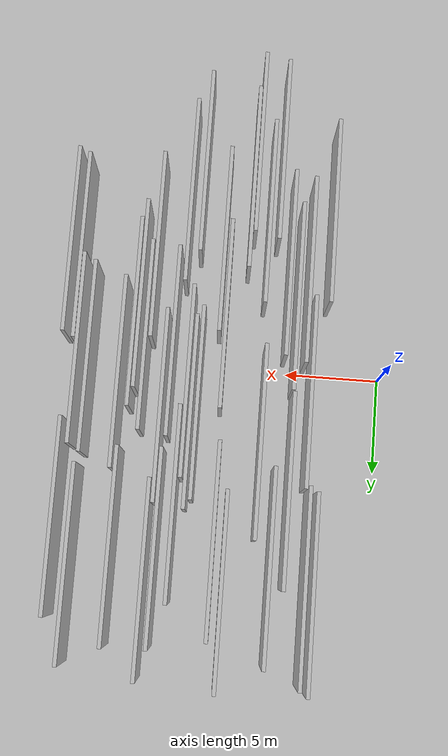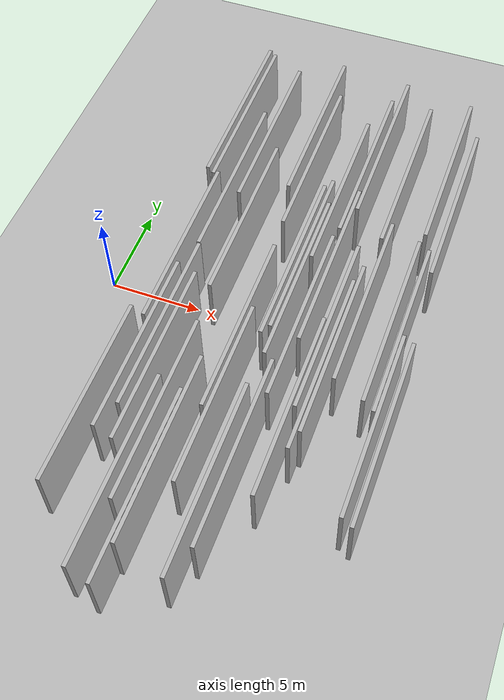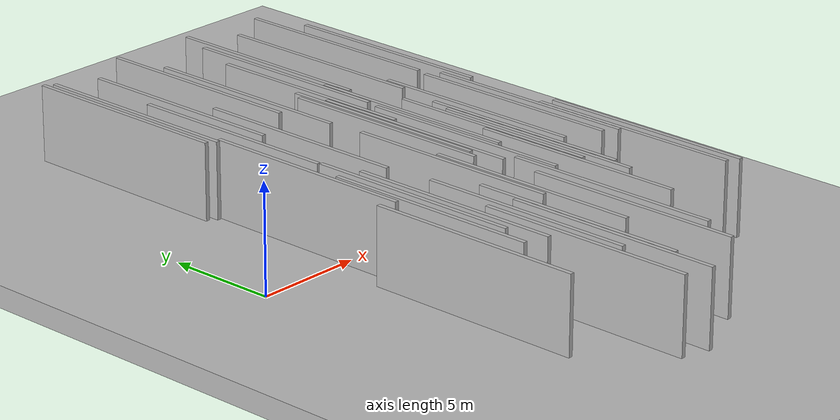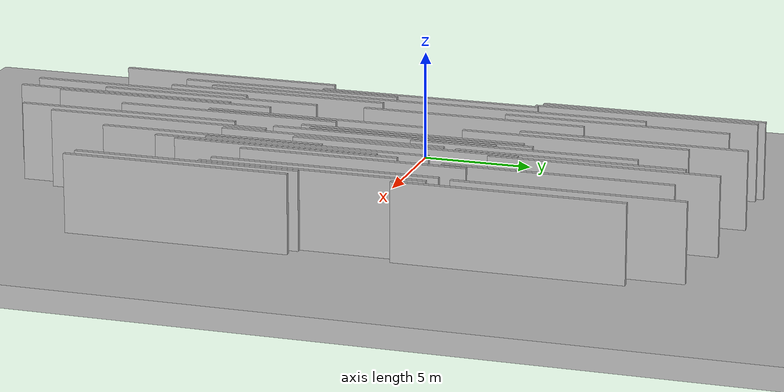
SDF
<?xml version="1.0" encoding="utf-8"?>

<sdf version="1.6">

   <world name="default">

      <gui fullscreen="0">

         <camera name="user_camera">

            <pose>-15 0 4.57585 0 0 0</pose>

            <view_controller>orbit</view_controller>

         </camera>

      </gui>

      <scene>

         <sky>

           <clouds>

             <speed>12</speed>

           </clouds>

         </sky>

         <ambient>0.4 0.4 0.4 1</ambient>

         <background>0.7 0.7 0.7 1</background>

         <shadows>1</shadows>

      </scene>

      <gravity>0 0 -9.8066</gravity>

      <magnetic_field>6e-06 2.3e-05 -4.2e-05</magnetic_field>

      <physics default="0" name="default_physics" type="ode">

         <ode>

            <solver>

               <type>quick</type>

               <iters>10</iters>

               <sor>1.0</sor>

               <use_dynamic_moi_rescaling>0</use_dynamic_moi_rescaling>

            </solver>

            <constraints>

               <cfm>0</cfm>

               <erp>0.2</erp>

               <contact_max_correcting_vel>100</contact_max_correcting_vel>

               <contact_surface_layer>0.001</contact_surface_layer>

            </constraints>

         </ode>

         <max_step_size>0.004</max_step_size>

         <real_time_factor>1</real_time_factor>

         <real_time_update_rate>250</real_time_update_rate>

      </physics>

      <light name="sun" type="directional">

         <cast_shadows>1</cast_shadows>

         <pose>0 0 10 0 0 0</pose>

         <diffuse>0.8 0.8 0.8 1</diffuse>

         <specular>0.2 0.2 0.2 1</specular>

         <attenuation>

            <range>1000</range>

            <constant>0.9</constant>

            <linear>0.01</linear>

            <quadratic>0.001</quadratic>

         </attenuation>

         <direction>-0.5 0.1 -0.9</direction>

      </light>

      <include>

         <name>ground_plane_1</name>

         <uri>model://HANNAS_ground_plane</uri>

         <pose>0 0 0  0 0 0</pose>

      </include>

      <include>

         <name>ground_plane_2</name>

         <uri>model://HANNAS_ground_plane</uri>

         <pose>100 0 0  0 0 0</pose>

      </include>

      <model name="HANNAS_wall_1">

         <static>1</static>

         <pose frame="">4.6352 6.4639 0.0 0.000000 0.000000 1.570796</pose>

         <link name="link">

            <pose frame="">0 0 2.00 0 0 0</pose>

            <collision name="collision">

               <geometry>

                  <box>

                     <size>10.00 0.2 4.00</size>

                  </box>

               </geometry>

               <max_contacts>10</max_contacts>

               <surface>

                  <contact>

                     <ode/>

                  </contact>

                  <bounce/>

                  <friction>

                     <torsional>

                        <ode/>

                     </torsional>

                     <ode/>

                  </friction>

               </surface>

            </collision>

            <visual name="visual">

               <cast_shadows>0</cast_shadows>

               <geometry>

                  <box>

                     <size>10.00 0.2 4.00</size>

                  </box>

               </geometry>

               <material>

                  <script>

                     <uri>model://HANNAS_wall/materials/scripts</uri>

                     <uri>model://HANNAS_wall/materials/textures</uri>

                     <name>vrc/HANNAS_wall</name>

                  </script>

               </material>

            </visual>

            <self_collide>0</self_collide>

            <enable_wind>0</enable_wind>

            <kinematic>0</kinematic>

         </link>

      </model>

      <model name="HANNAS_wall_2">

         <static>1</static>

         <pose frame="">13.7201 0.9784 0.0 0.000000 0.000000 1.570796</pose>

         <link name="link">

            <pose frame="">0 0 2.00 0 0 0</pose>

            <collision name="collision">

               <geometry>

                  <box>

                     <size>10.00 0.2 4.00</size>

                  </box>

               </geometry>

               <max_contacts>10</max_contacts>

               <surface>

                  <contact>

                     <ode/>

                  </contact>

                  <bounce/>

                  <friction>

                     <torsional>

                        <ode/>

                     </torsional>

                     <ode/>

                  </friction>

               </surface>

            </collision>

            <visual name="visual">

               <cast_shadows>0</cast_shadows>

               <geometry>

                  <box>

                     <size>10.00 0.2 4.00</size>

                  </box>

               </geometry>

               <material>

                  <script>

                     <uri>model://HANNAS_wall/materials/scripts</uri>

                     <uri>model://HANNAS_wall/materials/textures</uri>

                     <name>vrc/HANNAS_wall</name>

                  </script>

               </material>

            </visual>

            <self_collide>0</self_collide>

            <enable_wind>0</enable_wind>

            <kinematic>0</kinematic>

         </link>

      </model>

      <model name="HANNAS_wall_3">

         <static>1</static>

         <pose frame="">5.3705 10.3229 0.0 0.000000 0.000000 1.570796</pose>

         <link name="link">

            <pose frame="">0 0 2.00 0 0 0</pose>

            <collision name="collision">

               <geometry>

                  <box>

                     <size>10.00 0.2 4.00</size>

                  </box>

               </geometry>

               <max_contacts>10</max_contacts>

               <surface>

                  <contact>

                     <ode/>

                  </contact>

                  <bounce/>

                  <friction>

                     <torsional>

                        <ode/>

                     </torsional>

                     <ode/>

                  </friction>

               </surface>

            </collision>

            <visual name="visual">

               <cast_shadows>0</cast_shadows>

               <geometry>

                  <box>

                     <size>10.00 0.2 4.00</size>

                  </box>

               </geometry>

               <material>

                  <script>

                     <uri>model://HANNAS_wall/materials/scripts</uri>

                     <uri>model://HANNAS_wall/materials/textures</uri>

                     <name>vrc/HANNAS_wall</name>

                  </script>

               </material>

            </visual>

            <self_collide>0</self_collide>

            <enable_wind>0</enable_wind>

            <kinematic>0</kinematic>

         </link>

      </model>

      <model name="HANNAS_wall_4">

         <static>1</static>

         <pose frame="">5.9149 -11.5257 0.0 0.000000 0.000000 1.570796</pose>

         <link name="link">

            <pose frame="">0 0 2.00 0 0 0</pose>

            <collision name="collision">

               <geometry>

                  <box>

                     <size>10.00 0.2 4.00</size>

                  </box>

               </geometry>

               <max_contacts>10</max_contacts>

               <surface>

                  <contact>

                     <ode/>

                  </contact>

                  <bounce/>

                  <friction>

                     <torsional>

                        <ode/>

                     </torsional>

                     <ode/>

                  </friction>

               </surface>

            </collision>

            <visual name="visual">

               <cast_shadows>0</cast_shadows>

               <geometry>

                  <box>

                     <size>10.00 0.2 4.00</size>

                  </box>

               </geometry>

               <material>

                  <script>

                     <uri>model://HANNAS_wall/materials/scripts</uri>

                     <uri>model://HANNAS_wall/materials/textures</uri>

                     <name>vrc/HANNAS_wall</name>

                  </script>

               </material>

            </visual>

            <self_collide>0</self_collide>

            <enable_wind>0</enable_wind>

            <kinematic>0</kinematic>

         </link>

      </model>

      <model name="HANNAS_wall_5">

         <static>1</static>

         <pose frame="">11.4226 2.5769 0.0 0.000000 0.000000 1.570796</pose>

         <link name="link">

            <pose frame="">0 0 2.00 0 0 0</pose>

            <collision name="collision">

               <geometry>

                  <box>

                     <size>10.00 0.2 4.00</size>

                  </box>

               </geometry>

               <max_contacts>10</max_contacts>

               <surface>

                  <contact>

                     <ode/>

                  </contact>

                  <bounce/>

                  <friction>

                     <torsional>

                        <ode/>

                     </torsional>

                     <ode/>

                  </friction>

               </surface>

            </collision>

            <visual name="visual">

               <cast_shadows>0</cast_shadows>

               <geometry>

                  <box>

                     <size>10.00 0.2 4.00</size>

                  </box>

               </geometry>

               <material>

                  <script>

                     <uri>model://HANNAS_wall/materials/scripts</uri>

                     <uri>model://HANNAS_wall/materials/textures</uri>

                     <name>vrc/HANNAS_wall</name>

                  </script>

               </material>

            </visual>

            <self_collide>0</self_collide>

            <enable_wind>0</enable_wind>

            <kinematic>0</kinematic>

         </link>

      </model>

      <model name="HANNAS_wall_6">

         <static>1</static>

         <pose frame="">9.5640 2.3115 0.0 0.000000 0.000000 1.570796</pose>

         <link name="link">

            <pose frame="">0 0 2.00 0 0 0</pose>

            <collision name="collision">

               <geometry>

                  <box>

                     <size>10.00 0.2 4.00</size>

                  </box>

               </geometry>

               <max_contacts>10</max_contacts>

               <surface>

                  <contact>

                     <ode/>

                  </contact>

                  <bounce/>

                  <friction>

                     <torsional>

                        <ode/>

                     </torsional>

                     <ode/>

                  </friction>

               </surface>

            </collision>

            <visual name="visual">

               <cast_shadows>0</cast_shadows>

               <geometry>

                  <box>

                     <size>10.00 0.2 4.00</size>

                  </box>

               </geometry>

               <material>

                  <script>

                     <uri>model://HANNAS_wall/materials/scripts</uri>

                     <uri>model://HANNAS_wall/materials/textures</uri>

                     <name>vrc/HANNAS_wall</name>

                  </script>

               </material>

            </visual>

            <self_collide>0</self_collide>

            <enable_wind>0</enable_wind>

            <kinematic>0</kinematic>

         </link>

      </model>

      <model name="HANNAS_wall_7">

         <static>1</static>

         <pose frame="">13.1284 -2.2053 0.0 0.000000 0.000000 1.570796</pose>

         <link name="link">

            <pose frame="">0 0 2.00 0 0 0</pose>

            <collision name="collision">

               <geometry>

                  <box>

                     <size>10.00 0.2 4.00</size>

                  </box>

               </geometry>

               <max_contacts>10</max_contacts>

               <surface>

                  <contact>

                     <ode/>

                  </contact>

                  <bounce/>

                  <friction>

                     <torsional>

                        <ode/>

                     </torsional>

                     <ode/>

                  </friction>

               </surface>

            </collision>

            <visual name="visual">

               <cast_shadows>0</cast_shadows>

               <geometry>

                  <box>

                     <size>10.00 0.2 4.00</size>

                  </box>

               </geometry>

               <material>

                  <script>

                     <uri>model://HANNAS_wall/materials/scripts</uri>

                     <uri>model://HANNAS_wall/materials/textures</uri>

                     <name>vrc/HANNAS_wall</name>

                  </script>

               </material>

            </visual>

            <self_collide>0</self_collide>

            <enable_wind>0</enable_wind>

            <kinematic>0</kinematic>

         </link>

      </model>

      <model name="HANNAS_wall_8">

         <static>1</static>

         <pose frame="">4.7058 -3.6011 0.0 0.000000 0.000000 1.570796</pose>

         <link name="link">

            <pose frame="">0 0 2.00 0 0 0</pose>

            <collision name="collision">

               <geometry>

                  <box>

                     <size>10.00 0.2 4.00</size>

                  </box>

               </geometry>

               <max_contacts>10</max_contacts>

               <surface>

                  <contact>

                     <ode/>

                  </contact>

                  <bounce/>

                  <friction>

                     <torsional>

                        <ode/>

                     </torsional>

                     <ode/>

                  </friction>

               </surface>

            </collision>

            <visual name="visual">

               <cast_shadows>0</cast_shadows>

               <geometry>

                  <box>

                     <size>10.00 0.2 4.00</size>

                  </box>

               </geometry>

               <material>

                  <script>

                     <uri>model://HANNAS_wall/materials/scripts</uri>

                     <uri>model://HANNAS_wall/materials/textures</uri>

                     <name>vrc/HANNAS_wall</name>

                  </script>

               </material>

            </visual>

            <self_collide>0</self_collide>

            <enable_wind>0</enable_wind>

            <kinematic>0</kinematic>

         </link>

      </model>

      <model name="HANNAS_wall_9">

         <static>1</static>

         <pose frame="">10.6544 -8.9496 0.0 0.000000 0.000000 1.570796</pose>

         <link name="link">

            <pose frame="">0 0 2.00 0 0 0</pose>

            <collision name="collision">

               <geometry>

                  <box>

                     <size>10.00 0.2 4.00</size>

                  </box>

               </geometry>

               <max_contacts>10</max_contacts>

               <surface>

                  <contact>

                     <ode/>

                  </contact>

                  <bounce/>

                  <friction>

                     <torsional>

                        <ode/>

                     </torsional>

                     <ode/>

                  </friction>

               </surface>

            </collision>

            <visual name="visual">

               <cast_shadows>0</cast_shadows>

               <geometry>

                  <box>

                     <size>10.00 0.2 4.00</size>

                  </box>

               </geometry>

               <material>

                  <script>

                     <uri>model://HANNAS_wall/materials/scripts</uri>

                     <uri>model://HANNAS_wall/materials/textures</uri>

                     <name>vrc/HANNAS_wall</name>

                  </script>

               </material>

            </visual>

            <self_collide>0</self_collide>

            <enable_wind>0</enable_wind>

            <kinematic>0</kinematic>

         </link>

      </model>

      <model name="HANNAS_wall_10">

         <static>1</static>

         <pose frame="">4.1410 -5.0530 0.0 0.000000 0.000000 1.570796</pose>

         <link name="link">

            <pose frame="">0 0 2.00 0 0 0</pose>

            <collision name="collision">

               <geometry>

                  <box>

                     <size>10.00 0.2 4.00</size>

                  </box>

               </geometry>

               <max_contacts>10</max_contacts>

               <surface>

                  <contact>

                     <ode/>

                  </contact>

                  <bounce/>

                  <friction>

                     <torsional>

                        <ode/>

                     </torsional>

                     <ode/>

                  </friction>

               </surface>

            </collision>

            <visual name="visual">

               <cast_shadows>0</cast_shadows>

               <geometry>

                  <box>

                     <size>10.00 0.2 4.00</size>

                  </box>

               </geometry>

               <material>

                  <script>

                     <uri>model://HANNAS_wall/materials/scripts</uri>

                     <uri>model://HANNAS_wall/materials/textures</uri>

                     <name>vrc/HANNAS_wall</name>

                  </script>

               </material>

            </visual>

            <self_collide>0</self_collide>

            <enable_wind>0</enable_wind>

            <kinematic>0</kinematic>

         </link>

      </model>

      <model name="HANNAS_wall_11">

         <static>1</static>

         <pose frame="">12.4754 -1.0310 0.0 0.000000 0.000000 1.570796</pose>

         <link name="link">

            <pose frame="">0 0 2.00 0 0 0</pose>

            <collision name="collision">

               <geometry>

                  <box>

                     <size>10.00 0.2 4.00</size>

                  </box>

               </geometry>

               <max_contacts>10</max_contacts>

               <surface>

                  <contact>

                     <ode/>

                  </contact>

                  <bounce/>

                  <friction>

                     <torsional>

                        <ode/>

                     </torsional>

                     <ode/>

                  </friction>

               </surface>

            </collision>

            <visual name="visual">

               <cast_shadows>0</cast_shadows>

               <geometry>

                  <box>

                     <size>10.00 0.2 4.00</size>

                  </box>

               </geometry>

               <material>

                  <script>

                     <uri>model://HANNAS_wall/materials/scripts</uri>

                     <uri>model://HANNAS_wall/materials/textures</uri>

                     <name>vrc/HANNAS_wall</name>

                  </script>

               </material>

            </visual>

            <self_collide>0</self_collide>

            <enable_wind>0</enable_wind>

            <kinematic>0</kinematic>

         </link>

      </model>

      <model name="HANNAS_wall_12">

         <static>1</static>

         <pose frame="">9.9890 -10.5965 0.0 0.000000 0.000000 1.570796</pose>

         <link name="link">

            <pose frame="">0 0 2.00 0 0 0</pose>

            <collision name="collision">

               <geometry>

                  <box>

                     <size>10.00 0.2 4.00</size>

                  </box>

               </geometry>

               <max_contacts>10</max_contacts>

               <surface>

                  <contact>

                     <ode/>

                  </contact>

                  <bounce/>

                  <friction>

                     <torsional>

                        <ode/>

                     </torsional>

                     <ode/>

                  </friction>

               </surface>

            </collision>

            <visual name="visual">

               <cast_shadows>0</cast_shadows>

               <geometry>

                  <box>

                     <size>10.00 0.2 4.00</size>

                  </box>

               </geometry>

               <material>

                  <script>

                     <uri>model://HANNAS_wall/materials/scripts</uri>

                     <uri>model://HANNAS_wall/materials/textures</uri>

                     <name>vrc/HANNAS_wall</name>

                  </script>

               </material>

            </visual>

            <self_collide>0</self_collide>

            <enable_wind>0</enable_wind>

            <kinematic>0</kinematic>

         </link>

      </model>

      <model name="HANNAS_wall_13">

         <static>1</static>

         <pose frame="">7.7050 11.6390 0.0 0.000000 0.000000 1.570796</pose>

         <link name="link">

            <pose frame="">0 0 2.00 0 0 0</pose>

            <collision name="collision">

               <geometry>

                  <box>

                     <size>10.00 0.2 4.00</size>

                  </box>

               </geometry>

               <max_contacts>10</max_contacts>

               <surface>

                  <contact>

                     <ode/>

                  </contact>

                  <bounce/>

                  <friction>

                     <torsional>

                        <ode/>

                     </torsional>

                     <ode/>

                  </friction>

               </surface>

            </collision>

            <visual name="visual">

               <cast_shadows>0</cast_shadows>

               <geometry>

                  <box>

                     <size>10.00 0.2 4.00</size>

                  </box>

               </geometry>

               <material>

                  <script>

                     <uri>model://HANNAS_wall/materials/scripts</uri>

                     <uri>model://HANNAS_wall/materials/textures</uri>

                     <name>vrc/HANNAS_wall</name>

                  </script>

               </material>

            </visual>

            <self_collide>0</self_collide>

            <enable_wind>0</enable_wind>

            <kinematic>0</kinematic>

         </link>

      </model>

      <model name="HANNAS_wall_14">

         <static>1</static>

         <pose frame="">15.3601 0.2854 0.0 0.000000 0.000000 1.570796</pose>

         <link name="link">

            <pose frame="">0 0 2.00 0 0 0</pose>

            <collision name="collision">

               <geometry>

                  <box>

                     <size>10.00 0.2 4.00</size>

                  </box>

               </geometry>

               <max_contacts>10</max_contacts>

               <surface>

                  <contact>

                     <ode/>

                  </contact>

                  <bounce/>

                  <friction>

                     <torsional>

                        <ode/>

                     </torsional>

                     <ode/>

                  </friction>

               </surface>

            </collision>

            <visual name="visual">

               <cast_shadows>0</cast_shadows>

               <geometry>

                  <box>

                     <size>10.00 0.2 4.00</size>

                  </box>

               </geometry>

               <material>

                  <script>

                     <uri>model://HANNAS_wall/materials/scripts</uri>

                     <uri>model://HANNAS_wall/materials/textures</uri>

                     <name>vrc/HANNAS_wall</name>

                  </script>

               </material>

            </visual>

            <self_collide>0</self_collide>

            <enable_wind>0</enable_wind>

            <kinematic>0</kinematic>

         </link>

      </model>

      <model name="HANNAS_wall_15">

         <static>1</static>

         <pose frame="">8.2668 9.2103 0.0 0.000000 0.000000 1.570796</pose>

         <link name="link">

            <pose frame="">0 0 2.00 0 0 0</pose>

            <collision name="collision">

               <geometry>

                  <box>

                     <size>10.00 0.2 4.00</size>

                  </box>

               </geometry>

               <max_contacts>10</max_contacts>

               <surface>

                  <contact>

                     <ode/>

                  </contact>

                  <bounce/>

                  <friction>

                     <torsional>

                        <ode/>

                     </torsional>

                     <ode/>

                  </friction>

               </surface>

            </collision>

            <visual name="visual">

               <cast_shadows>0</cast_shadows>

               <geometry>

                  <box>

                     <size>10.00 0.2 4.00</size>

                  </box>

               </geometry>

               <material>

                  <script>

                     <uri>model://HANNAS_wall/materials/scripts</uri>

                     <uri>model://HANNAS_wall/materials/textures</uri>

                     <name>vrc/HANNAS_wall</name>

                  </script>

               </material>

            </visual>

            <self_collide>0</self_collide>

            <enable_wind>0</enable_wind>

            <kinematic>0</kinematic>

         </link>

      </model>

      <model name="HANNAS_wall_16">

         <static>1</static>

         <pose frame="">6.4407 -8.0639 0.0 0.000000 0.000000 1.570796</pose>

         <link name="link">

            <pose frame="">0 0 2.00 0 0 0</pose>

            <collision name="collision">

               <geometry>

                  <box>

                     <size>10.00 0.2 4.00</size>

                  </box>

               </geometry>

               <max_contacts>10</max_contacts>

               <surface>

                  <contact>

                     <ode/>

                  </contact>

                  <bounce/>

                  <friction>

                     <torsional>

                        <ode/>

                     </torsional>

                     <ode/>

                  </friction>

               </surface>

            </collision>

            <visual name="visual">

               <cast_shadows>0</cast_shadows>

               <geometry>

                  <box>

                     <size>10.00 0.2 4.00</size>

                  </box>

               </geometry>

               <material>

                  <script>

                     <uri>model://HANNAS_wall/materials/scripts</uri>

                     <uri>model://HANNAS_wall/materials/textures</uri>

                     <name>vrc/HANNAS_wall</name>

                  </script>

               </material>

            </visual>

            <self_collide>0</self_collide>

            <enable_wind>0</enable_wind>

            <kinematic>0</kinematic>

         </link>

      </model>

      <model name="HANNAS_wall_17">

         <static>1</static>

         <pose frame="">12.2205 -5.8652 0.0 0.000000 0.000000 1.570796</pose>

         <link name="link">

            <pose frame="">0 0 2.00 0 0 0</pose>

            <collision name="collision">

               <geometry>

                  <box>

                     <size>10.00 0.2 4.00</size>

                  </box>

               </geometry>

               <max_contacts>10</max_contacts>

               <surface>

                  <contact>

                     <ode/>

                  </contact>

                  <bounce/>

                  <friction>

                     <torsional>

                        <ode/>

                     </torsional>

                     <ode/>

                  </friction>

               </surface>

            </collision>

            <visual name="visual">

               <cast_shadows>0</cast_shadows>

               <geometry>

                  <box>

                     <size>10.00 0.2 4.00</size>

                  </box>

               </geometry>

               <material>

                  <script>

                     <uri>model://HANNAS_wall/materials/scripts</uri>

                     <uri>model://HANNAS_wall/materials/textures</uri>

                     <name>vrc/HANNAS_wall</name>

                  </script>

               </material>

            </visual>

            <self_collide>0</self_collide>

            <enable_wind>0</enable_wind>

            <kinematic>0</kinematic>

         </link>

      </model>

      <model name="HANNAS_wall_18">

         <static>1</static>

         <pose frame="">5.2064 -5.3615 0.0 0.000000 0.000000 1.570796</pose>

         <link name="link">

            <pose frame="">0 0 2.00 0 0 0</pose>

            <collision name="collision">

               <geometry>

                  <box>

                     <size>10.00 0.2 4.00</size>

                  </box>

               </geometry>

               <max_contacts>10</max_contacts>

               <surface>

                  <contact>

                     <ode/>

                  </contact>

                  <bounce/>

                  <friction>

                     <torsional>

                        <ode/>

                     </torsional>

                     <ode/>

                  </friction>

               </surface>

            </collision>

            <visual name="visual">

               <cast_shadows>0</cast_shadows>

               <geometry>

                  <box>

                     <size>10.00 0.2 4.00</size>

                  </box>

               </geometry>

               <material>

                  <script>

                     <uri>model://HANNAS_wall/materials/scripts</uri>

                     <uri>model://HANNAS_wall/materials/textures</uri>

                     <name>vrc/HANNAS_wall</name>

                  </script>

               </material>

            </visual>

            <self_collide>0</self_collide>

            <enable_wind>0</enable_wind>

            <kinematic>0</kinematic>

         </link>

      </model>

      <model name="HANNAS_wall_19">

         <static>1</static>

         <pose frame="">7.1819 -11.8583 0.0 0.000000 0.000000 1.570796</pose>

         <link name="link">

            <pose frame="">0 0 2.00 0 0 0</pose>

            <collision name="collision">

               <geometry>

                  <box>

                     <size>10.00 0.2 4.00</size>

                  </box>

               </geometry>

               <max_contacts>10</max_contacts>

               <surface>

                  <contact>

                     <ode/>

                  </contact>

                  <bounce/>

                  <friction>

                     <torsional>

                        <ode/>

                     </torsional>

                     <ode/>

                  </friction>

               </surface>

            </collision>

            <visual name="visual">

               <cast_shadows>0</cast_shadows>

               <geometry>

                  <box>

                     <size>10.00 0.2 4.00</size>

                  </box>

               </geometry>

               <material>

                  <script>

                     <uri>model://HANNAS_wall/materials/scripts</uri>

                     <uri>model://HANNAS_wall/materials/textures</uri>

                     <name>vrc/HANNAS_wall</name>

                  </script>

               </material>

            </visual>

            <self_collide>0</self_collide>

            <enable_wind>0</enable_wind>

            <kinematic>0</kinematic>

         </link>

      </model>

      <model name="HANNAS_wall_20">

         <static>1</static>

         <pose frame="">6.2011 4.0828 0.0 0.000000 0.000000 1.570796</pose>

         <link name="link">

            <pose frame="">0 0 2.00 0 0 0</pose>

            <collision name="collision">

               <geometry>

                  <box>

                     <size>10.00 0.2 4.00</size>

                  </box>

               </geometry>

               <max_contacts>10</max_contacts>

               <surface>

                  <contact>

                     <ode/>

                  </contact>

                  <bounce/>

                  <friction>

                     <torsional>

                        <ode/>

                     </torsional>

                     <ode/>

                  </friction>

               </surface>

            </collision>

            <visual name="visual">

               <cast_shadows>0</cast_shadows>

               <geometry>

                  <box>

                     <size>10.00 0.2 4.00</size>

                  </box>

               </geometry>

               <material>

                  <script>

                     <uri>model://HANNAS_wall/materials/scripts</uri>

                     <uri>model://HANNAS_wall/materials/textures</uri>

                     <name>vrc/HANNAS_wall</name>

                  </script>

               </material>

            </visual>

            <self_collide>0</self_collide>

            <enable_wind>0</enable_wind>

            <kinematic>0</kinematic>

         </link>

      </model>

      <model name="HANNAS_wall_21">

         <static>1</static>

         <pose frame="">16.7433 -5.8524 0.0 0.000000 0.000000 1.570796</pose>

         <link name="link">

            <pose frame="">0 0 2.00 0 0 0</pose>

            <collision name="collision">

               <geometry>

                  <box>

                     <size>10.00 0.2 4.00</size>

                  </box>

               </geometry>

               <max_contacts>10</max_contacts>

               <surface>

                  <contact>

                     <ode/>

                  </contact>

                  <bounce/>

                  <friction>

                     <torsional>

                        <ode/>

                     </torsional>

                     <ode/>

                  </friction>

               </surface>

            </collision>

            <visual name="visual">

               <cast_shadows>0</cast_shadows>

               <geometry>

                  <box>

                     <size>10.00 0.2 4.00</size>

                  </box>

               </geometry>

               <material>

                  <script>

                     <uri>model://HANNAS_wall/materials/scripts</uri>

                     <uri>model://HANNAS_wall/materials/textures</uri>

                     <name>vrc/HANNAS_wall</name>

                  </script>

               </material>

            </visual>

            <self_collide>0</self_collide>

            <enable_wind>0</enable_wind>

            <kinematic>0</kinematic>

         </link>

      </model>

      <model name="HANNAS_wall_22">

         <static>1</static>

         <pose frame="">11.6684 11.3239 0.0 0.000000 0.000000 1.570796</pose>

         <link name="link">

            <pose frame="">0 0 2.00 0 0 0</pose>

            <collision name="collision">

               <geometry>

                  <box>

                     <size>10.00 0.2 4.00</size>

                  </box>

               </geometry>

               <max_contacts>10</max_contacts>

               <surface>

                  <contact>

                     <ode/>

                  </contact>

                  <bounce/>

                  <friction>

                     <torsional>

                        <ode/>

                     </torsional>

                     <ode/>

                  </friction>

               </surface>

            </collision>

            <visual name="visual">

               <cast_shadows>0</cast_shadows>

               <geometry>

                  <box>

                     <size>10.00 0.2 4.00</size>

                  </box>

               </geometry>

               <material>

                  <script>

                     <uri>model://HANNAS_wall/materials/scripts</uri>

                     <uri>model://HANNAS_wall/materials/textures</uri>

                     <name>vrc/HANNAS_wall</name>

                  </script>

               </material>

            </visual>

            <self_collide>0</self_collide>

            <enable_wind>0</enable_wind>

            <kinematic>0</kinematic>

         </link>

      </model>

      <model name="HANNAS_wall_23">

         <static>1</static>

         <pose frame="">10.4020 7.5210 0.0 0.000000 0.000000 1.570796</pose>

         <link name="link">

            <pose frame="">0 0 2.00 0 0 0</pose>

            <collision name="collision">

               <geometry>

                  <box>

                     <size>10.00 0.2 4.00</size>

                  </box>

               </geometry>

               <max_contacts>10</max_contacts>

               <surface>

                  <contact>

                     <ode/>

                  </contact>

                  <bounce/>

                  <friction>

                     <torsional>

                        <ode/>

                     </torsional>

                     <ode/>

                  </friction>

               </surface>

            </collision>

            <visual name="visual">

               <cast_shadows>0</cast_shadows>

               <geometry>

                  <box>

                     <size>10.00 0.2 4.00</size>

                  </box>

               </geometry>

               <material>

                  <script>

                     <uri>model://HANNAS_wall/materials/scripts</uri>

                     <uri>model://HANNAS_wall/materials/textures</uri>

                     <name>vrc/HANNAS_wall</name>

                  </script>

               </material>

            </visual>

            <self_collide>0</self_collide>

            <enable_wind>0</enable_wind>

            <kinematic>0</kinematic>

         </link>

      </model>

      <model name="HANNAS_wall_24">

         <static>1</static>

         <pose frame="">15.5157 10.8172 0.0 0.000000 0.000000 1.570796</pose>

         <link name="link">

            <pose frame="">0 0 2.00 0 0 0</pose>

            <collision name="collision">

               <geometry>

                  <box>

                     <size>10.00 0.2 4.00</size>

                  </box>

               </geometry>

               <max_contacts>10</max_contacts>

               <surface>

                  <contact>

                     <ode/>

                  </contact>

                  <bounce/>

                  <friction>

                     <torsional>

                        <ode/>

                     </torsional>

                     <ode/>

                  </friction>

               </surface>

            </collision>

            <visual name="visual">

               <cast_shadows>0</cast_shadows>

               <geometry>

                  <box>

                     <size>10.00 0.2 4.00</size>

                  </box>

               </geometry>

               <material>

                  <script>

                     <uri>model://HANNAS_wall/materials/scripts</uri>

                     <uri>model://HANNAS_wall/materials/textures</uri>

                     <name>vrc/HANNAS_wall</name>

                  </script>

               </material>

            </visual>

            <self_collide>0</self_collide>

            <enable_wind>0</enable_wind>

            <kinematic>0</kinematic>

         </link>

      </model>

      <model name="HANNAS_wall_25">

         <static>1</static>

         <pose frame="">15.9691 -0.0881 0.0 0.000000 0.000000 1.570796</pose>

         <link name="link">

            <pose frame="">0 0 2.00 0 0 0</pose>

            <collision name="collision">

               <geometry>

                  <box>

                     <size>10.00 0.2 4.00</size>

                  </box>

               </geometry>

               <max_contacts>10</max_contacts>

               <surface>

                  <contact>

                     <ode/>

                  </contact>

                  <bounce/>

                  <friction>

                     <torsional>

                        <ode/>

                     </torsional>

                     <ode/>

                  </friction>

               </surface>

            </collision>

            <visual name="visual">

               <cast_shadows>0</cast_shadows>

               <geometry>

                  <box>

                     <size>10.00 0.2 4.00</size>

                  </box>

               </geometry>

               <material>

                  <script>

                     <uri>model://HANNAS_wall/materials/scripts</uri>

                     <uri>model://HANNAS_wall/materials/textures</uri>

                     <name>vrc/HANNAS_wall</name>

                  </script>

               </material>

            </visual>

            <self_collide>0</self_collide>

            <enable_wind>0</enable_wind>

            <kinematic>0</kinematic>

         </link>

      </model>

      <model name="HANNAS_wall_26">

         <static>1</static>

         <pose frame="">11.0374 -0.8071 0.0 0.000000 0.000000 1.570796</pose>

         <link name="link">

            <pose frame="">0 0 2.00 0 0 0</pose>

            <collision name="collision">

               <geometry>

                  <box>

                     <size>10.00 0.2 4.00</size>

                  </box>

               </geometry>

               <max_contacts>10</max_contacts>

               <surface>

                  <contact>

                     <ode/>

                  </contact>

                  <bounce/>

                  <friction>

                     <torsional>

                        <ode/>

                     </torsional>

                     <ode/>

                  </friction>

               </surface>

            </collision>

            <visual name="visual">

               <cast_shadows>0</cast_shadows>

               <geometry>

                  <box>

                     <size>10.00 0.2 4.00</size>

                  </box>

               </geometry>

               <material>

                  <script>

                     <uri>model://HANNAS_wall/materials/scripts</uri>

                     <uri>model://HANNAS_wall/materials/textures</uri>

                     <name>vrc/HANNAS_wall</name>

                  </script>

               </material>

            </visual>

            <self_collide>0</self_collide>

            <enable_wind>0</enable_wind>

            <kinematic>0</kinematic>

         </link>

      </model>

      <model name="HANNAS_wall_27">

         <static>1</static>

         <pose frame="">3.5579 11.1885 0.0 0.000000 0.000000 1.570796</pose>

         <link name="link">

            <pose frame="">0 0 2.00 0 0 0</pose>

            <collision name="collision">

               <geometry>

                  <box>

                     <size>10.00 0.2 4.00</size>

                  </box>

               </geometry>

               <max_contacts>10</max_contacts>

               <surface>

                  <contact>

                     <ode/>

                  </contact>

                  <bounce/>

                  <friction>

                     <torsional>

                        <ode/>

                     </torsional>

                     <ode/>

                  </friction>

               </surface>

            </collision>

            <visual name="visual">

               <cast_shadows>0</cast_shadows>

               <geometry>

                  <box>

                     <size>10.00 0.2 4.00</size>

                  </box>

               </geometry>

               <material>

                  <script>

                     <uri>model://HANNAS_wall/materials/scripts</uri>

                     <uri>model://HANNAS_wall/materials/textures</uri>

                     <name>vrc/HANNAS_wall</name>

                  </script>

               </material>

            </visual>

            <self_collide>0</self_collide>

            <enable_wind>0</enable_wind>

            <kinematic>0</kinematic>

         </link>

      </model>

      <model name="HANNAS_wall_28">

         <static>1</static>

         <pose frame="">3.1534 11.4542 0.0 0.000000 0.000000 1.570796</pose>

         <link name="link">

            <pose frame="">0 0 2.00 0 0 0</pose>

            <collision name="collision">

               <geometry>

                  <box>

                     <size>10.00 0.2 4.00</size>

                  </box>

               </geometry>

               <max_contacts>10</max_contacts>

               <surface>

                  <contact>

                     <ode/>

                  </contact>

                  <bounce/>

                  <friction>

                     <torsional>

                        <ode/>

                     </torsional>

                     <ode/>

                  </friction>

               </surface>

            </collision>

            <visual name="visual">

               <cast_shadows>0</cast_shadows>

               <geometry>

                  <box>

                     <size>10.00 0.2 4.00</size>

                  </box>

               </geometry>

               <material>

                  <script>

                     <uri>model://HANNAS_wall/materials/scripts</uri>

                     <uri>model://HANNAS_wall/materials/textures</uri>

                     <name>vrc/HANNAS_wall</name>

                  </script>

               </material>

            </visual>

            <self_collide>0</self_collide>

            <enable_wind>0</enable_wind>

            <kinematic>0</kinematic>

         </link>

      </model>

      <model name="HANNAS_wall_29">

         <static>1</static>

         <pose frame="">8.3974 -2.4082 0.0 0.000000 0.000000 1.570796</pose>

         <link name="link">

            <pose frame="">0 0 2.00 0 0 0</pose>

            <collision name="collision">

               <geometry>

                  <box>

                     <size>10.00 0.2 4.00</size>

                  </box>

               </geometry>

               <max_contacts>10</max_contacts>

               <surface>

                  <contact>

                     <ode/>

                  </contact>

                  <bounce/>

                  <friction>

                     <torsional>

                        <ode/>

                     </torsional>

                     <ode/>

                  </friction>

               </surface>

            </collision>

            <visual name="visual">

               <cast_shadows>0</cast_shadows>

               <geometry>

                  <box>

                     <size>10.00 0.2 4.00</size>

                  </box>

               </geometry>

               <material>

                  <script>

                     <uri>model://HANNAS_wall/materials/scripts</uri>

                     <uri>model://HANNAS_wall/materials/textures</uri>

                     <name>vrc/HANNAS_wall</name>

                  </script>

               </material>

            </visual>

            <self_collide>0</self_collide>

            <enable_wind>0</enable_wind>

            <kinematic>0</kinematic>

         </link>

      </model>

      <model name="HANNAS_wall_30">

         <static>1</static>

         <pose frame="">10.1440 1.2391 0.0 0.000000 0.000000 1.570796</pose>

         <link name="link">

            <pose frame="">0 0 2.00 0 0 0</pose>

            <collision name="collision">

               <geometry>

                  <box>

                     <size>10.00 0.2 4.00</size>

                  </box>

               </geometry>

               <max_contacts>10</max_contacts>

               <surface>

                  <contact>

                     <ode/>

                  </contact>

                  <bounce/>

                  <friction>

                     <torsional>

                        <ode/>

                     </torsional>

                     <ode/>

                  </friction>

               </surface>

            </collision>

            <visual name="visual">

               <cast_shadows>0</cast_shadows>

               <geometry>

                  <box>

                     <size>10.00 0.2 4.00</size>

                  </box>

               </geometry>

               <material>

                  <script>

                     <uri>model://HANNAS_wall/materials/scripts</uri>

                     <uri>model://HANNAS_wall/materials/textures</uri>

                     <name>vrc/HANNAS_wall</name>

                  </script>

               </material>

            </visual>

            <self_collide>0</self_collide>

            <enable_wind>0</enable_wind>

            <kinematic>0</kinematic>

         </link>

      </model>

      <model name="HANNAS_wall_31">

         <static>1</static>

         <pose frame="">16.4245 8.5296 0.0 0.000000 0.000000 1.570796</pose>

         <link name="link">

            <pose frame="">0 0 2.00 0 0 0</pose>

            <collision name="collision">

               <geometry>

                  <box>

                     <size>10.00 0.2 4.00</size>

                  </box>

               </geometry>

               <max_contacts>10</max_contacts>

               <surface>

                  <contact>

                     <ode/>

                  </contact>

                  <bounce/>

                  <friction>

                     <torsional>

                        <ode/>

                     </torsional>

                     <ode/>

                  </friction>

               </surface>

            </collision>

            <visual name="visual">

               <cast_shadows>0</cast_shadows>

               <geometry>

                  <box>

                     <size>10.00 0.2 4.00</size>

                  </box>

               </geometry>

               <material>

                  <script>

                     <uri>model://HANNAS_wall/materials/scripts</uri>

                     <uri>model://HANNAS_wall/materials/textures</uri>

                     <name>vrc/HANNAS_wall</name>

                  </script>

               </material>

            </visual>

            <self_collide>0</self_collide>

            <enable_wind>0</enable_wind>

            <kinematic>0</kinematic>

         </link>

      </model>

      <model name="HANNAS_wall_32">

         <static>1</static>

         <pose frame="">12.8944 -3.1849 0.0 0.000000 0.000000 1.570796</pose>

         <link name="link">

            <pose frame="">0 0 2.00 0 0 0</pose>

            <collision name="collision">

               <geometry>

                  <box>

                     <size>10.00 0.2 4.00</size>

                  </box>

               </geometry>

               <max_contacts>10</max_contacts>

               <surface>

                  <contact>

                     <ode/>

                  </contact>

                  <bounce/>

                  <friction>

                     <torsional>

                        <ode/>

                     </torsional>

                     <ode/>

                  </friction>

               </surface>

            </collision>

            <visual name="visual">

               <cast_shadows>0</cast_shadows>

               <geometry>

                  <box>

                     <size>10.00 0.2 4.00</size>

                  </box>

               </geometry>

               <material>

                  <script>

                     <uri>model://HANNAS_wall/materials/scripts</uri>

                     <uri>model://HANNAS_wall/materials/textures</uri>

                     <name>vrc/HANNAS_wall</name>

                  </script>

               </material>

            </visual>

            <self_collide>0</self_collide>

            <enable_wind>0</enable_wind>

            <kinematic>0</kinematic>

         </link>

      </model>

      <model name="HANNAS_wall_33">

         <static>1</static>

         <pose frame="">16.1802 -5.5635 0.0 0.000000 0.000000 1.570796</pose>

         <link name="link">

            <pose frame="">0 0 2.00 0 0 0</pose>

            <collision name="collision">

               <geometry>

                  <box>

                     <size>10.00 0.2 4.00</size>

                  </box>

               </geometry>

               <max_contacts>10</max_contacts>

               <surface>

                  <contact>

                     <ode/>

                  </contact>

                  <bounce/>

                  <friction>

                     <torsional>

                        <ode/>

                     </torsional>

                     <ode/>

                  </friction>

               </surface>

            </collision>

            <visual name="visual">

               <cast_shadows>0</cast_shadows>

               <geometry>

                  <box>

                     <size>10.00 0.2 4.00</size>

                  </box>

               </geometry>

               <material>

                  <script>

                     <uri>model://HANNAS_wall/materials/scripts</uri>

                     <uri>model://HANNAS_wall/materials/textures</uri>

                     <name>vrc/HANNAS_wall</name>

                  </script>

               </material>

            </visual>

            <self_collide>0</self_collide>

            <enable_wind>0</enable_wind>

            <kinematic>0</kinematic>

         </link>

      </model>

      <model name="HANNAS_wall_34">

         <static>1</static>

         <pose frame="">13.4355 9.8178 0.0 0.000000 0.000000 1.570796</pose>

         <link name="link">

            <pose frame="">0 0 2.00 0 0 0</pose>

            <collision name="collision">

               <geometry>

                  <box>

                     <size>10.00 0.2 4.00</size>

                  </box>

               </geometry>

               <max_contacts>10</max_contacts>

               <surface>

                  <contact>

                     <ode/>

                  </contact>

                  <bounce/>

                  <friction>

                     <torsional>

                        <ode/>

                     </torsional>

                     <ode/>

                  </friction>

               </surface>

            </collision>

            <visual name="visual">

               <cast_shadows>0</cast_shadows>

               <geometry>

                  <box>

                     <size>10.00 0.2 4.00</size>

                  </box>

               </geometry>

               <material>

                  <script>

                     <uri>model://HANNAS_wall/materials/scripts</uri>

                     <uri>model://HANNAS_wall/materials/textures</uri>

                     <name>vrc/HANNAS_wall</name>

                  </script>

               </material>

            </visual>

            <self_collide>0</self_collide>

            <enable_wind>0</enable_wind>

            <kinematic>0</kinematic>

         </link>

      </model>

      <model name="HANNAS_wall_35">

         <static>1</static>

         <pose frame="">11.1837 9.7561 0.0 0.000000 0.000000 1.570796</pose>

         <link name="link">

            <pose frame="">0 0 2.00 0 0 0</pose>

            <collision name="collision">

               <geometry>

                  <box>

                     <size>10.00 0.2 4.00</size>

                  </box>

               </geometry>

               <max_contacts>10</max_contacts>

               <surface>

                  <contact>

                     <ode/>

                  </contact>

                  <bounce/>

                  <friction>

                     <torsional>

                        <ode/>

                     </torsional>

                     <ode/>

                  </friction>

               </surface>

            </collision>

            <visual name="visual">

               <cast_shadows>0</cast_shadows>

               <geometry>

                  <box>

                     <size>10.00 0.2 4.00</size>

                  </box>

               </geometry>

               <material>

                  <script>

                     <uri>model://HANNAS_wall/materials/scripts</uri>

                     <uri>model://HANNAS_wall/materials/textures</uri>

                     <name>vrc/HANNAS_wall</name>

                  </script>

               </material>

            </visual>

            <self_collide>0</self_collide>

            <enable_wind>0</enable_wind>

            <kinematic>0</kinematic>

         </link>

      </model>

      <model name="HANNAS_wall_36">

         <static>1</static>

         <pose frame="">3.7936 1.3617 0.0 0.000000 0.000000 1.570796</pose>

         <link name="link">

            <pose frame="">0 0 2.00 0 0 0</pose>

            <collision name="collision">

               <geometry>

                  <box>

                     <size>10.00 0.2 4.00</size>

                  </box>

               </geometry>

               <max_contacts>10</max_contacts>

               <surface>

                  <contact>

                     <ode/>

                  </contact>

                  <bounce/>

                  <friction>

                     <torsional>

                        <ode/>

                     </torsional>

                     <ode/>

                  </friction>

               </surface>

            </collision>

            <visual name="visual">

               <cast_shadows>0</cast_shadows>

               <geometry>

                  <box>

                     <size>10.00 0.2 4.00</size>

                  </box>

               </geometry>

               <material>

                  <script>

                     <uri>model://HANNAS_wall/materials/scripts</uri>

                     <uri>model://HANNAS_wall/materials/textures</uri>

                     <name>vrc/HANNAS_wall</name>

                  </script>

               </material>

            </visual>

            <self_collide>0</self_collide>

            <enable_wind>0</enable_wind>

            <kinematic>0</kinematic>

         </link>

      </model>

      <model name="HANNAS_wall_37">

         <static>1</static>

         <pose frame="">3.0415 -8.3242 0.0 0.000000 0.000000 1.570796</pose>

         <link name="link">

            <pose frame="">0 0 2.00 0 0 0</pose>

            <collision name="collision">

               <geometry>

                  <box>

                     <size>10.00 0.2 4.00</size>

                  </box>

               </geometry>

               <max_contacts>10</max_contacts>

               <surface>

                  <contact>

                     <ode/>

                  </contact>

                  <bounce/>

                  <friction>

                     <torsional>

                        <ode/>

                     </torsional>

                     <ode/>

                  </friction>

               </surface>

            </collision>

            <visual name="visual">

               <cast_shadows>0</cast_shadows>

               <geometry>

                  <box>

                     <size>10.00 0.2 4.00</size>

                  </box>

               </geometry>

               <material>

                  <script>

                     <uri>model://HANNAS_wall/materials/scripts</uri>

                     <uri>model://HANNAS_wall/materials/textures</uri>

                     <name>vrc/HANNAS_wall</name>

                  </script>

               </material>

            </visual>

            <self_collide>0</self_collide>

            <enable_wind>0</enable_wind>

            <kinematic>0</kinematic>

         </link>

      </model>

      <model name="HANNAS_wall_38">

         <static>1</static>

         <pose frame="">8.7049 -6.3973 0.0 0.000000 0.000000 1.570796</pose>

         <link name="link">

            <pose frame="">0 0 2.00 0 0 0</pose>

            <collision name="collision">

               <geometry>

                  <box>

                     <size>10.00 0.2 4.00</size>

                  </box>

               </geometry>

               <max_contacts>10</max_contacts>

               <surface>

                  <contact>

                     <ode/>

                  </contact>

                  <bounce/>

                  <friction>

                     <torsional>

                        <ode/>

                     </torsional>

                     <ode/>

                  </friction>

               </surface>

            </collision>

            <visual name="visual">

               <cast_shadows>0</cast_shadows>

               <geometry>

                  <box>

                     <size>10.00 0.2 4.00</size>

                  </box>

               </geometry>

               <material>

                  <script>

                     <uri>model://HANNAS_wall/materials/scripts</uri>

                     <uri>model://HANNAS_wall/materials/textures</uri>

                     <name>vrc/HANNAS_wall</name>

                  </script>

               </material>

            </visual>

            <self_collide>0</self_collide>

            <enable_wind>0</enable_wind>

            <kinematic>0</kinematic>

         </link>

      </model>

      <model name="HANNAS_wall_39">

         <static>1</static>

         <pose frame="">9.8769 2.7953 0.0 0.000000 0.000000 1.570796</pose>

         <link name="link">

            <pose frame="">0 0 2.00 0 0 0</pose>

            <collision name="collision">

               <geometry>

                  <box>

                     <size>10.00 0.2 4.00</size>

                  </box>

               </geometry>

               <max_contacts>10</max_contacts>

               <surface>

                  <contact>

                     <ode/>

                  </contact>

                  <bounce/>

                  <friction>

                     <torsional>

                        <ode/>

                     </torsional>

                     <ode/>

                  </friction>

               </surface>

            </collision>

            <visual name="visual">

               <cast_shadows>0</cast_shadows>

               <geometry>

                  <box>

                     <size>10.00 0.2 4.00</size>

                  </box>

               </geometry>

               <material>

                  <script>

                     <uri>model://HANNAS_wall/materials/scripts</uri>

                     <uri>model://HANNAS_wall/materials/textures</uri>

                     <name>vrc/HANNAS_wall</name>

                  </script>

               </material>

            </visual>

            <self_collide>0</self_collide>

            <enable_wind>0</enable_wind>

            <kinematic>0</kinematic>

         </link>

      </model>

      <model name="HANNAS_wall_40">

         <static>1</static>

         <pose frame="">7.3985 -9.8915 0.0 0.000000 0.000000 1.570796</pose>

         <link name="link">

            <pose frame="">0 0 2.00 0 0 0</pose>

            <collision name="collision">

               <geometry>

                  <box>

                     <size>10.00 0.2 4.00</size>

                  </box>

               </geometry>

               <max_contacts>10</max_contacts>

               <surface>

                  <contact>

                     <ode/>

                  </contact>

                  <bounce/>

                  <friction>

                     <torsional>

                        <ode/>

                     </torsional>

                     <ode/>

                  </friction>

               </surface>

            </collision>

            <visual name="visual">

               <cast_shadows>0</cast_shadows>

               <geometry>

                  <box>

                     <size>10.00 0.2 4.00</size>

                  </box>

               </geometry>

               <material>

                  <script>

                     <uri>model://HANNAS_wall/materials/scripts</uri>

                     <uri>model://HANNAS_wall/materials/textures</uri>

                     <name>vrc/HANNAS_wall</name>

                  </script>

               </material>

            </visual>

            <self_collide>0</self_collide>

            <enable_wind>0</enable_wind>

            <kinematic>0</kinematic>

         </link>

      </model>

   </world>

</sdf>
